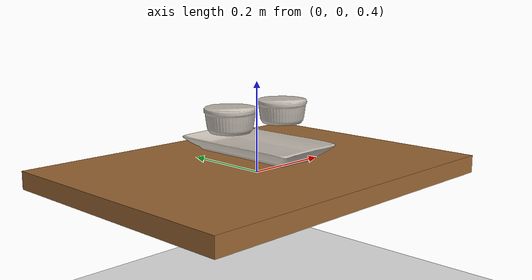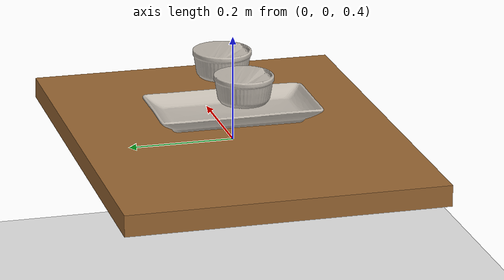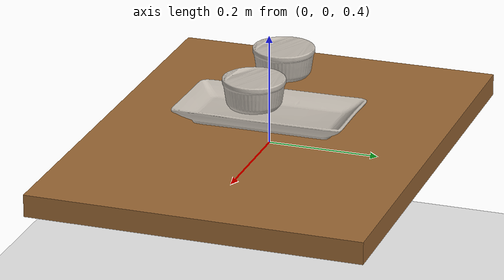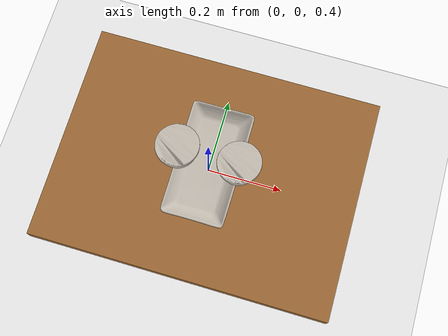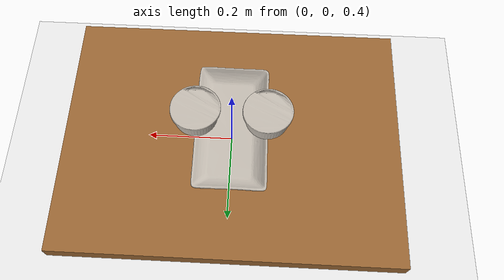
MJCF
<mujoco model="tray_ramekin_preview">
  <compiler angle="radian" meshdir="/home/shyam/projects/cc/mujoco_scanned_objects/models/" texturedir="/home/shyam/projects/cc/mujoco_scanned_objects/models/"/>

  <option gravity="0 0 -9.81"/>

  <asset>
    <!-- Tray assets -->
    <texture type="2d" name="tray_texture" file="Threshold_Tray_Rectangle_Porcelain/texture.png"/>
    <material name="tray_material" texture="tray_texture" specular="0.5" shininess="0.5"/>
    <mesh name="tray_mesh" file="Threshold_Tray_Rectangle_Porcelain/model.obj"/>

    <!-- Ramekin assets -->
    <texture type="2d" name="ramekin_texture" file="Threshold_Ramekin_White_Porcelain/texture.png"/>
    <material name="ramekin_material" texture="ramekin_texture" specular="0.5" shininess="0.5"/>
    <mesh name="ramekin_mesh" file="Threshold_Ramekin_White_Porcelain/model.obj"/>

    <!-- Table texture -->
    <texture type="2d" name="wood_tex" builtin="flat" rgb1="0.6 0.4 0.2" rgb2="0.5 0.35 0.15" width="512" height="512"/>
    <material name="wood_mat" texture="wood_tex" specular="0.1" shininess="0.1"/>

    <!-- Floor -->
    <texture type="2d" name="floor_tex" builtin="checker" rgb1="0.9 0.9 0.9" rgb2="0.7 0.7 0.7" width="512" height="512"/>
    <material name="floor_mat" texture="floor_tex" texrepeat="5 5" specular="0.1"/>
  </asset>

  <worldbody>
    <!-- Lighting -->
    <light pos="0 0 2" dir="0 0 -1" diffuse="1 1 1" specular="0.3 0.3 0.3"/>
    <light pos="1 1 1.5" dir="-0.5 -0.5 -1" diffuse="0.5 0.5 0.5"/>

    <!-- Floor -->
    <geom name="floor" type="plane" size="2 2 0.1" rgba="0.9 0.9 0.9 1" material="floor_mat"/>

    <!-- Table surface -->
    <body name="table" pos="0 0 0.4">
      <geom name="table_top" type="box" size="0.4 0.3 0.02" material="wood_mat"/>
    </body>

    <!-- Tray - positioned on table -->
    <body name="tray" pos="0 0 0.44">
      <freejoint/>
      <geom name="tray_visual" type="mesh" mesh="tray_mesh" material="tray_material"
            contype="1" conaffinity="1"/>
    </body>

    <!-- Ramekin 1 - on top of tray, left side -->
    <body name="ramekin_1" pos="-0.08 0 0.50">
      <freejoint/>
      <geom name="ramekin_1_visual" type="mesh" mesh="ramekin_mesh" material="ramekin_material"
            contype="1" conaffinity="1"/>
    </body>

    <!-- Ramekin 2 - on top of tray, right side -->
    <body name="ramekin_2" pos="0.08 0 0.50">
      <freejoint/>
      <geom name="ramekin_2_visual" type="mesh" mesh="ramekin_mesh" material="ramekin_material"
            contype="1" conaffinity="1"/>
    </body>
  </worldbody>
</mujoco>
